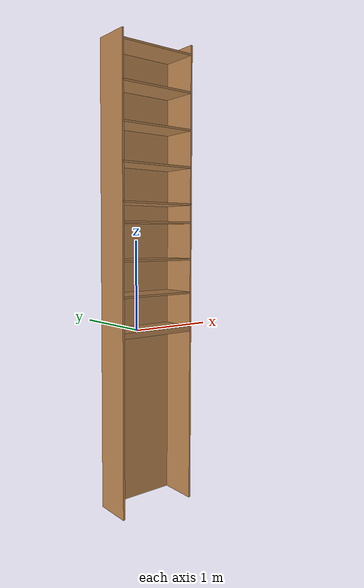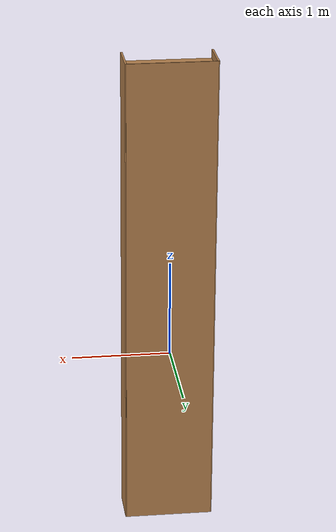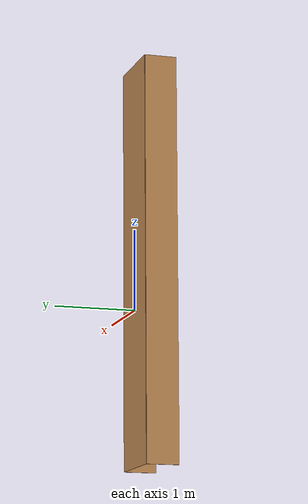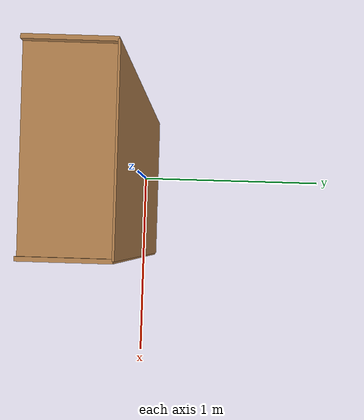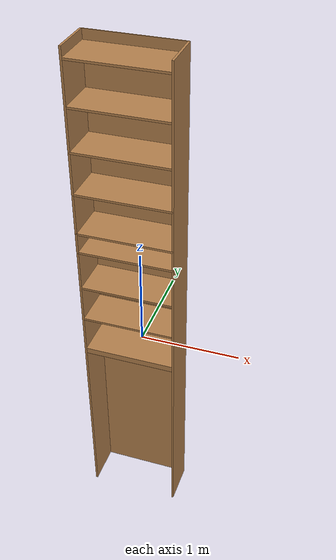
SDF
<?xml version="1.0" ?>
<sdf version="1.5">
  <model name="bookshelf_custom">
    <static>true</static>
    <link name="link">
      <inertial>
        <mass>1.0</mass>
      </inertial>
      <collision name="back">
        <pose>0 0.005 0.6 0 0 0</pose>
        <geometry>
          <box>
            <size>0.9 0.01 5</size>
          </box>
        </geometry>
      </collision>
      <visual name="visual1">
        <pose>0 0.005 0.6 0 0 0</pose>
        <geometry>
          <box>
            <size>0.9 0.01 5</size>
          </box>
        </geometry>
        <material>
          <script>
            <uri>file://media/materials/scripts/gazebo.material</uri>
            <name>Gazebo/Wood</name>
          </script>
        </material>
      </visual>
      <collision name="left_side">
        <pose>0.45 -0.195 0.6 0 0 0</pose>
        <geometry>
          <box>
            <size>0.02 0.4 5</size>
          </box>
        </geometry>
      </collision>
      <visual name="visual2">
        <pose>0.45 -0.195 0.6 0 0 0</pose>
        <geometry>
          <box>
            <size>0.02 0.4 5</size>
          </box>
        </geometry>
        <material>
          <script>
            <uri>file://media/materials/scripts/gazebo.material</uri>
            <name>Gazebo/Wood</name>
          </script>
        </material>
      </visual>
      <collision name="right_side">
        <pose>-0.45 -0.195 0.6 0 0 0</pose>
        <geometry>
          <box>
            <size>0.02 0.4 5</size>
          </box>
        </geometry>
      </collision>
      <visual name="visual3">
        <pose>-0.45 -0.195 0.6 0 0 0</pose>
        <geometry>
          <box>
            <size>0.02 0.4 5</size>
          </box>
        </geometry>
        <material>
          <script>
            <uri>file://media/materials/scripts/gazebo.material</uri>
            <name>Gazebo/Wood</name>
          </script>
        </material>
      </visual>
      <collision name="bottom">
        <pose>0 -0.195 0.03 0 0 0</pose>
        <geometry>
          <box>
            <size>0.88 0.4 0.06</size>
          </box>
        </geometry>
      </collision>
      <visual name="visual4">
        <pose>0 -0.195 0.03 0 0 0</pose>
        <geometry>
          <box>
            <size>0.88 0.4 0.06</size>
          </box>
        </geometry>
        <material>
          <script>
            <uri>file://media/materials/scripts/gazebo.material</uri>
            <name>Gazebo/Wood</name>
          </script>
        </material>
      </visual>
      <collision name="top">
        <pose>0 -0.195 3.0 0 0 0</pose>
        <geometry>
          <box>
            <size>0.88 0.4 0.02</size>
          </box>
        </geometry>
      </collision>
      <visual name="visual5">
        <pose>0 -0.195 3.0 0 0 0</pose>
        <geometry>
          <box>
            <size>0.88 0.4 0.02</size>
          </box>
        </geometry>
        <material>
          <script>
            <uri>file://media/materials/scripts/gazebo.material</uri>
            <name>Gazebo/Wood</name>
          </script>
        </material>
      </visual>
      <collision name="low_shelf">
        <pose>0 -0.195 0.43 0 0 0</pose>
        <geometry>
          <box>
            <size>0.88 0.4 0.02</size>
          </box>
        </geometry>
      </collision>
      <visual name="visual6">
        <pose>0 -0.195 0.43 0 0 0</pose>
        <geometry>
          <box>
            <size>0.88 0.4 0.02</size>
          </box>
        </geometry>
        <material>
          <script>
            <uri>file://media/materials/scripts/gazebo.material</uri>
            <name>Gazebo/Wood</name>
          </script>
        </material>
      </visual>
      <collision name="high_shelf">
        <pose>0 -0.195 0.8 0 0 0</pose>
        <geometry>
          <box>
            <size>0.88 0.4 0.02</size>
          </box>
        </geometry>
      </collision>
      <visual name="visual7">
        <pose>0 -0.195 0.8 0 0 0</pose>
        <geometry>
          <box>
            <size>0.88 0.4 0.02</size>
          </box>
        </geometry>
        <material>
          <script>
            <uri>file://media/materials/scripts/gazebo.material</uri>
            <name>Gazebo/Wood</name>
          </script>
        </material>
      </visual>

      <collision name="shelf_1">
        <pose>0 -0.195 1.2 0 0 0</pose>
        <geometry>
          <box>
            <size>0.9 0.4 0.02</size>
          </box>
        </geometry>
      </collision>
      <visual name="shelf_visual_1">
        <pose>0 -0.195 1.2 0 0 0</pose>
        <geometry>
          <box>
            <size>0.9 0.4 0.02</size>
          </box>
        </geometry>
        <material>
          <script>
            <uri>file://media/materials/scripts/gazebo.material</uri>
            <name>Gazebo/Wood</name>
          </script>
        </material>
      </visual>

      <collision name="shelf_2">
        <pose>0 -0.195 1.4 0 0 0</pose>
        <geometry>
          <box>
            <size>0.9 0.4 0.02</size>
          </box>
        </geometry>
      </collision>
      <visual name="shelf_visual_2">
        <pose>0 -0.195 1.4 0 0 0</pose>
        <geometry>
          <box>
            <size>0.9 0.4 0.02</size>
          </box>
        </geometry>
        <material>
          <script>
            <uri>file://media/materials/scripts/gazebo.material</uri>
            <name>Gazebo/Wood</name>
          </script>
        </material>
      </visual>

      <collision name="shelf_3">
        <pose>0 -0.195 1.8 0 0 0</pose>
        <geometry>
          <box>
            <size>0.9 0.4 0.02</size>
          </box>
        </geometry>
      </collision>
      <visual name="shelf_visual_3">
        <pose>0 -0.195 1.8 0 0 0</pose>
        <geometry>
          <box>
            <size>0.9 0.4 0.02</size>
          </box>
        </geometry>
        <material>
          <script>
            <uri>file://media/materials/scripts/gazebo.material</uri>
            <name>Gazebo/Wood</name>
          </script>
        </material>
      </visual>

      <collision name="shelf_4">
        <pose>0 -0.195 2.2 0 0 0</pose>
        <geometry>
          <box>
            <size>0.9 0.4 0.02</size>
          </box>
        </geometry>
      </collision>
      <visual name="shelf_visual_4">
        <pose>0 -0.195 2.2 0 0 0</pose>
        <geometry>
          <box>
            <size>0.9 0.4 0.02</size>
          </box>
        </geometry>
        <material>
          <script>
            <uri>file://media/materials/scripts/gazebo.material</uri>
            <name>Gazebo/Wood</name>
          </script>
        </material>
      </visual>

      <collision name="shelf_5">
        <pose>0 -0.195 2.6 0 0 0</pose>
        <geometry>
          <box>
            <size>0.9 0.4 0.02</size>
          </box>
        </geometry>
      </collision>
      <visual name="shelf_visual_5">
        <pose>0 -0.195 2.6 0 0 0</pose>
        <geometry>
          <box>
            <size>0.9 0.4 0.02</size>
          </box>
        </geometry>
        <material>
          <script>
            <uri>file://media/materials/scripts/gazebo.material</uri>
            <name>Gazebo/Wood</name>
          </script>
        </material>
      </visual>
</link>
  </model>
</sdf>
